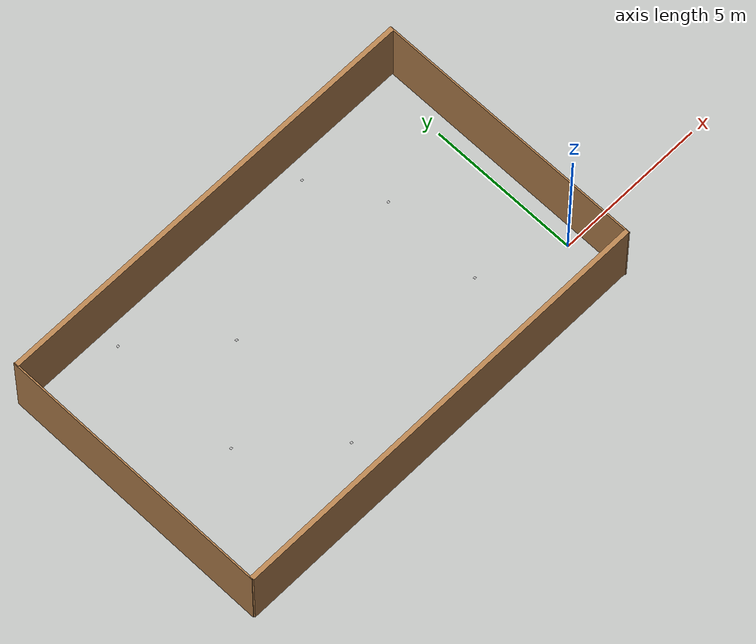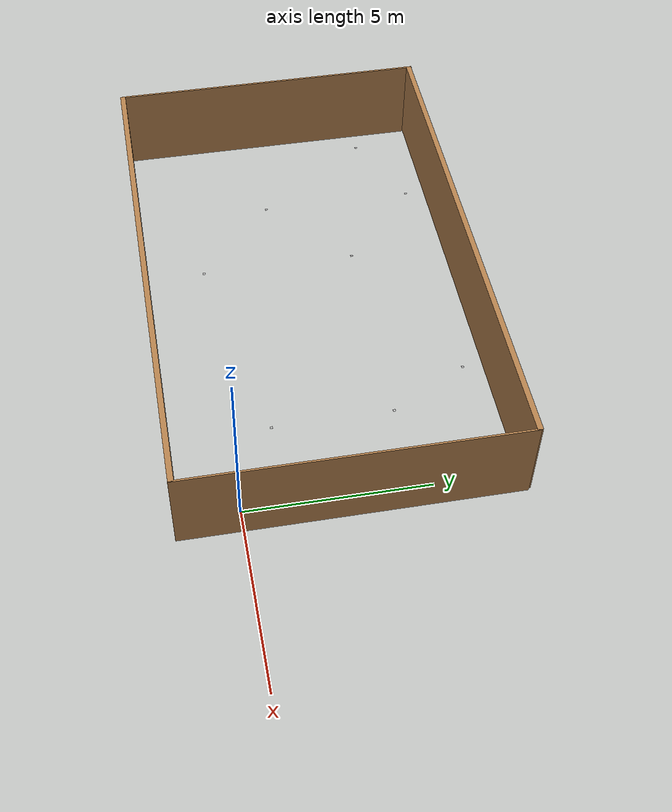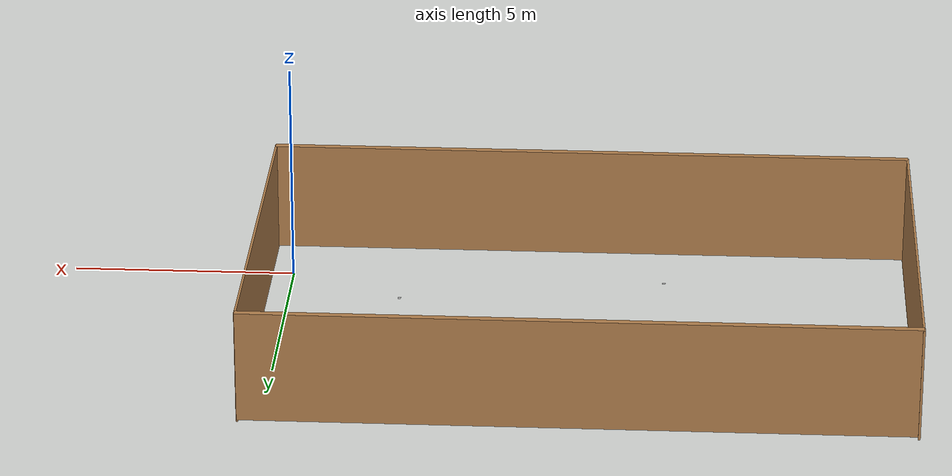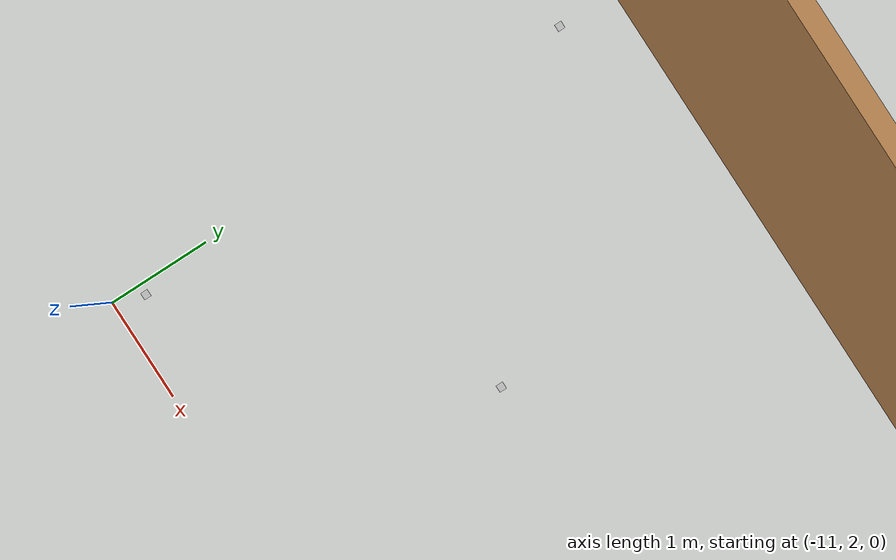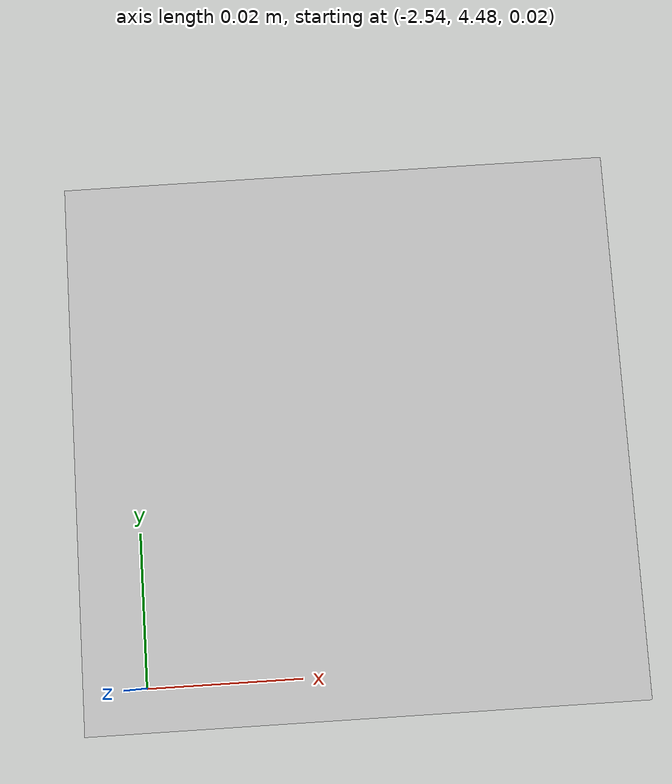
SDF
<sdf version="1.7">
 <world name="default">
  <light name="sun" type="directional">
   <pose>0 0 10 0 -0 0</pose>
   <diffuse>0.8 0.8 0.8 1</diffuse>
   <specular>0.2 0.2 0.2 1</specular>
   <attenuation>
    <range>1000</range>
    <constant>0.9</constant>
    <linear>0.01</linear>
    <quadratic>0.001</quadratic>
   </attenuation>
   <direction>-0.5 0.1 -0.9</direction>
   <spot><inner_angle>0</inner_angle><outer_angle>0</outer_angle><falloff>0</falloff></spot>
  </light>
  <gravity>0 0 -9.8</gravity>
  <magnetic_field>6e-06 2.3e-05 -4.2e-05</magnetic_field>
  <atmosphere type="adiabatic"/>
  <physics type="ode">
   <max_step_size>0.001</max_step_size>
   <real_time_factor>1</real_time_factor>
   <real_time_update_rate>1000</real_time_update_rate>
  </physics>
  <scene><ambient>0.4 0.4 0.4 1</ambient><background>0.7 0.7 0.7 1</background><shadows>1</shadows></scene>
  <spherical_coordinates>
   <surface_model>EARTH_WGS84</surface_model>
   <latitude_deg>0</latitude_deg>
   <longitude_deg>0</longitude_deg>
   <elevation>0</elevation>
   <heading_deg>0</heading_deg>
  </spherical_coordinates>
  <model name="Untitled1">
   <pose>-6.72636 -2.1859 0 0 -0 0</pose>
   <link name="Wall_19">
    <collision name="Wall_19_Collision">
     <geometry><box><size>14.5 0.15 2.5</size></box></geometry>
     <pose>0 0 1.25 0 -0 0</pose>
    </collision>
    <visual name="Wall_19_Visual">
     <pose>0 0 1.25 0 -0 0</pose>
     <geometry><box><size>14.5 0.15 2.5</size></box></geometry>
     <material>
      <script><uri>file://media/materials/scripts/gazebo.material</uri><name>Gazebo/Wood</name></script>
      <ambient>1 1 1 1</ambient>
     </material>
     <meta><layer>0</layer></meta>
    </visual>
    <pose>-0 0.551652 0 0 -0 0</pose>
   </link>
   <static>1</static>
  </model>
  <model name="Untitled1_clone">
   <pose>-6.72636 6.78932 0 0 -0 0</pose>
   <link name="Wall_19">
    <collision name="Wall_19_Collision">
     <geometry><box><size>14.5 0.15 2.5</size></box></geometry>
     <pose>0 0 1.25 0 -0 0</pose>
    </collision>
    <visual name="Wall_19_Visual">
     <pose>0 0 1.25 0 -0 0</pose>
     <geometry><box><size>14.5 0.15 2.5</size></box></geometry>
     <material>
      <script><uri>file://media/materials/scripts/gazebo.material</uri><name>Gazebo/Wood</name></script>
      <ambient>1 1 1 1</ambient>
     </material>
     <meta><layer>0</layer></meta>
    </visual>
    <pose>-0 0.551652 0 0 -0 0</pose>
   </link>
   <static>1</static>
  </model>
  <model name="walls">
   <link name="wall_1">
    <pose>8.5414 9.56211 1.21677 0 -0 0</pose>
    <inertial>
     <mass>2.8955</mass>
     <inertia><ixx>21.4909</ixx><ixy>0</ixy><ixz>0</ixz><iyy>1.56863</iyy><iyz>0</iyz><izz>19.9235</izz></inertia>
    </inertial>
    <visual name="visual">
     <geometry><box><size>0.05 9.08668 2.54921</size></box></geometry>
     <material>
      <script>
       <uri>file://usr/share/gazebo-11/media/materials/scripts/gazebo.material</uri>
       <name>Gazebo/Wood</name>
      </script>
      <shader type="pixel"/>
     </material>
    </visual>
    <collision name="collision">
     <geometry><box><size>0.05 9.08668 2.54921</size></box></geometry>
     <surface>
      <friction>
       <ode><mu>1</mu><mu2>1</mu2><fdir1>0 0 0</fdir1><slip1>0</slip1><slip2>0</slip2></ode>
       <torsional>
        <coefficient>1</coefficient>
        <patch_radius>0</patch_radius>
        <surface_radius>0</surface_radius>
        <use_patch_radius>1</use_patch_radius>
        <ode><slip>0</slip></ode>
       </torsional>
      </friction>
      <bounce><restitution_coefficient>0</restitution_coefficient><threshold>1e+06</threshold></bounce>
      <contact>
       <collide_without_contact>0</collide_without_contact>
       <collide_without_contact_bitmask>1</collide_without_contact_bitmask>
       <collide_bitmask>1</collide_bitmask>
       <ode>
        <soft_cfm>0</soft_cfm>
        <soft_erp>0.2</soft_erp>
        <kp>1e+13</kp>
        <kd>1</kd>
        <max_vel>0.01</max_vel>
        <min_depth>0</min_depth>
       </ode>
       <bullet>
        <split_impulse>1</split_impulse>
        <split_impulse_penetration_threshold>-0.01</split_impulse_penetration_threshold>
        <soft_cfm>0</soft_cfm>
        <soft_erp>0.2</soft_erp>
        <kp>1e+13</kp>
        <kd>1</kd>
       </bullet>
      </contact>
     </surface>
    </collision>
    <static>1</static>
   </link>
   <static>1</static>
   <pose>-8.02919 -6.73002 0 0 -0 0</pose>
  </model>
  <model name="walls_clone">
   <link name="wall_1">
    <pose>8.5414 9.56211 1.21677 0 -0 0</pose>
    <inertial>
     <mass>2.8955</mass>
     <inertia><ixx>21.4909</ixx><ixy>0</ixy><ixz>0</ixz><iyy>1.56863</iyy><iyz>0</iyz><izz>19.9235</izz></inertia>
    </inertial>
    <visual name="visual">
     <geometry><box><size>0.05 9.08668 2.54921</size></box></geometry>
     <material>
      <script>
       <uri>file://usr/share/gazebo-11/media/materials/scripts/gazebo.material</uri>
       <name>Gazebo/Wood</name>
      </script>
      <shader type="pixel"/>
     </material>
    </visual>
    <collision name="collision">
     <geometry><box><size>0.05 9.08668 2.54921</size></box></geometry>
     <surface>
      <friction>
       <ode><mu>1</mu><mu2>1</mu2><fdir1>0 0 0</fdir1><slip1>0</slip1><slip2>0</slip2></ode>
       <torsional>
        <coefficient>1</coefficient>
        <patch_radius>0</patch_radius>
        <surface_radius>0</surface_radius>
        <use_patch_radius>1</use_patch_radius>
        <ode><slip>0</slip></ode>
       </torsional>
      </friction>
      <bounce><restitution_coefficient>0</restitution_coefficient><threshold>1e+06</threshold></bounce>
      <contact>
       <collide_without_contact>0</collide_without_contact>
       <collide_without_contact_bitmask>1</collide_without_contact_bitmask>
       <collide_bitmask>1</collide_bitmask>
       <ode>
        <soft_cfm>0</soft_cfm>
        <soft_erp>0.2</soft_erp>
        <kp>1e+13</kp>
        <kd>1</kd>
        <max_vel>0.01</max_vel>
        <min_depth>0</min_depth>
       </ode>
       <bullet>
        <split_impulse>1</split_impulse>
        <split_impulse_penetration_threshold>-0.01</split_impulse_penetration_threshold>
        <soft_cfm>0</soft_cfm>
        <soft_erp>0.2</soft_erp>
        <kp>1e+13</kp>
        <kd>1</kd>
       </bullet>
      </contact>
     </surface>
    </collision>
    <static>1</static>
   </link>
   <static>1</static>
   <pose>-22.5154 -6.67331 0 0 -0 0</pose>
  </model>
  <model name="qr_shelf_A">
   <static>1</static>
   <link name="qr_shelf_A_link">
    <pose>0 0 0.001 0 -0 1.5708</pose>
    <visual name="visual_qr_shelf_A">
     <cast_shadows>0</cast_shadows>
     <geometry><box><size>0.07 0.07 1e-05</size></box></geometry>
     <material>
      <script>
       <uri>model://qr_shelf_A/materials/scripts</uri>
       <uri>model://qr_shelf_A/materials/textures</uri>
       <name>qr_shelf_A/qr_shelf_A</name>
      </script>
     </material>
    </visual>
   </link>
   <pose>-8.47661 4.50967 0.008096 0 -0 0</pose>
  </model>
  <model name="qr_shelf_B">
   <static>1</static>
   <link name="qr_shelf_B_link">
    <pose>0 0 0.001 0 -0 1.5708</pose>
    <visual name="visual_qr_shelf_B">
     <cast_shadows>0</cast_shadows>
     <geometry><box><size>0.07 0.07 1e-05</size></box></geometry>
     <material>
      <script>
       <uri>model://qr_shelf_B/materials/scripts</uri>
       <uri>model://qr_shelf_B/materials/textures</uri>
       <name>qr_shelf_B/qr_shelf_B</name>
      </script>
     </material>
    </visual>
   </link>
   <pose>-8.47661 0.073312 0.012477 0 -0 0</pose>
  </model>
  <model name="qr_shelf_C">
   <static>1</static>
   <link name="qr_shelf_C_link">
    <pose>0 0 0.001 0 -0 1.5708</pose>
    <visual name="visual_qr_shelf_C">
     <cast_shadows>0</cast_shadows>
     <geometry><box><size>0.07 0.07 1e-05</size></box></geometry>
     <material>
      <script>
       <uri>model://qr_shelf_C/materials/scripts</uri>
       <uri>model://qr_shelf_C/materials/textures</uri>
       <name>qr_shelf_C/qr_shelf_C</name>
      </script>
     </material>
    </visual>
   </link>
   <pose>-2.51197 4.50967 0.026237 0 -0 0</pose>
  </model>
  <model name="qr_shelf_D">
   <static>1</static>
   <link name="qr_shelf_D_link">
    <pose>0 0 0.001 0 -0 1.5708</pose>
    <visual name="visual_qr_shelf_D">
     <cast_shadows>0</cast_shadows>
     <geometry><box><size>0.07 0.07 1e-05</size></box></geometry>
     <material>
      <script>
       <uri>model://qr_shelf_D/materials/scripts</uri>
       <uri>model://qr_shelf_D/materials/textures</uri>
       <name>qr_shelf_D/qr_shelf_D</name>
      </script>
     </material>
    </visual>
   </link>
   <pose>-2.51197 1.16554 0.007554 0 -0 0</pose>
  </model>
  <model name="qr_zone_A1">
   <static>1</static>
   <link name="qr_zone_A1_link">
    <pose>0 0 0.001 0 -0 1.5708</pose>
    <visual name="visual_qr_zone_A1">
     <cast_shadows>0</cast_shadows>
     <geometry><box><size>0.07 0.07 1e-05</size></box></geometry>
     <material>
      <script>
       <uri>model://qr_zone_A1/materials/scripts</uri>
       <uri>model://qr_zone_A1/materials/textures</uri>
       <name>qr_zone_A1/qr_zone_A1</name>
      </script>
     </material>
    </visual>
   </link>
   <pose>-10.8946 2.29781 0.011222 0 -0 0</pose>
  </model>
  <model name="qr_zone_B1">
   <static>1</static>
   <link name="qr_zone_B1_link">
    <pose>0 0 0.001 0 -0 1.5708</pose>
    <visual name="visual_qr_zone_B1">
     <cast_shadows>0</cast_shadows>
     <geometry><box><size>0.07 0.07 1e-05</size></box></geometry>
     <material>
      <script>
       <uri>model://qr_zone_B1/materials/scripts</uri>
       <uri>model://qr_zone_B1/materials/textures</uri>
       <name>qr_zone_B1/qr_zone_B1</name>
      </script>
     </material>
    </visual>
   </link>
   <pose>-10.8946 6.70115 0.00408 0 -0 0</pose>
  </model>
  <model name="qr_zone_c1">
   <static>1</static>
   <link name="qr_zone_c1_link">
    <pose>0 0 0.001 0 -0 1.5708</pose>
    <visual name="visual_qr_zone_c1">
     <cast_shadows>0</cast_shadows>
     <geometry><box><size>0.07 0.07 1e-05</size></box></geometry>
     <material>
      <script>
       <uri>model://qr_zone_c1/materials/scripts</uri>
       <uri>model://qr_zone_c1/materials/textures</uri>
       <name>qr_zone_c1/qr_zone_c1</name>
      </script>
     </material>
    </visual>
   </link>
   <pose>-3.70153 6.70624 0.007213 0 -0 0</pose>
  </model>
  <model name="qr_zone_D1">
   <static>1</static>
   <link name="qr_zone_D1_link">
    <pose>0 0 0.001 0 -0 1.5708</pose>
    <visual name="visual_qr_zone_D1">
     <cast_shadows>0</cast_shadows>
     <geometry><box><size>0.07 0.07 1e-05</size></box></geometry>
     <material>
      <script>
       <uri>model://qr_zone_D1/materials/scripts</uri>
       <uri>model://qr_zone_D1/materials/textures</uri>
       <name>qr_zone_D1/qr_zone_D1</name>
      </script>
     </material>
    </visual>
   </link>
   <pose>-13.2928 5.59084 0.0045 0 -0 0</pose>
  </model>
 </world>
</sdf>
